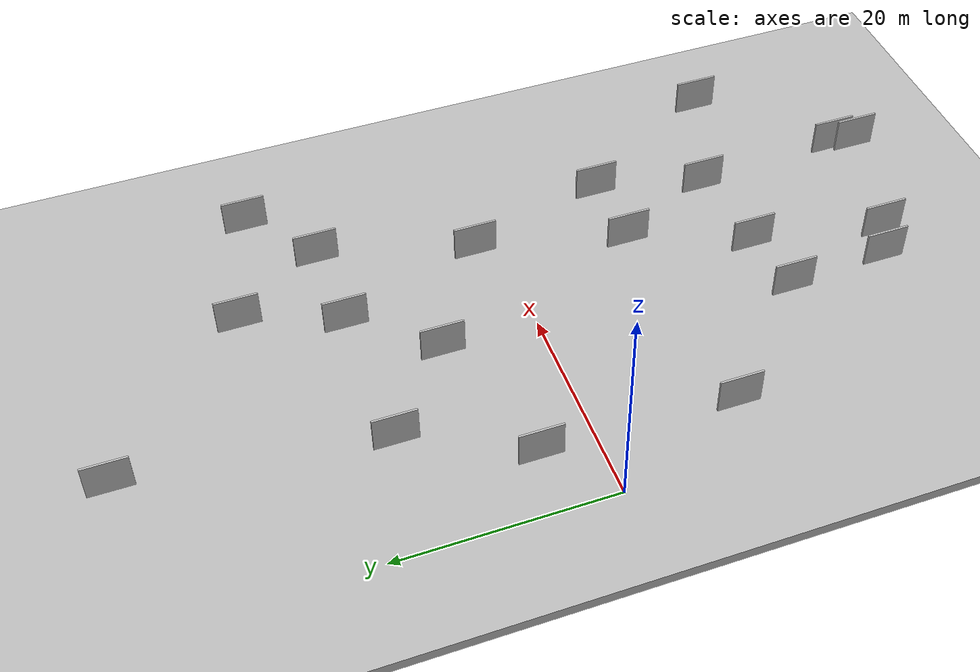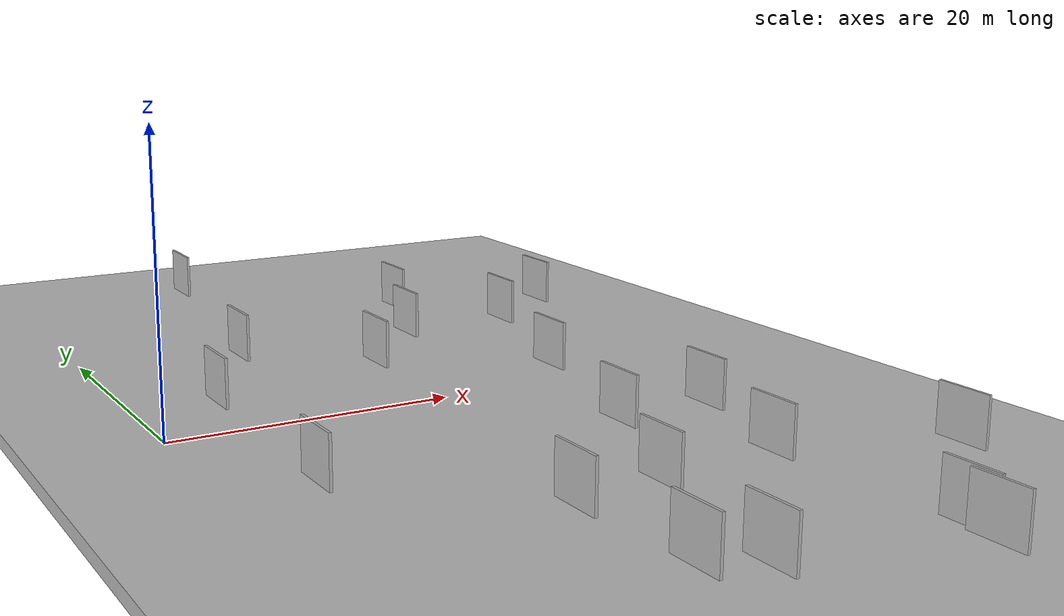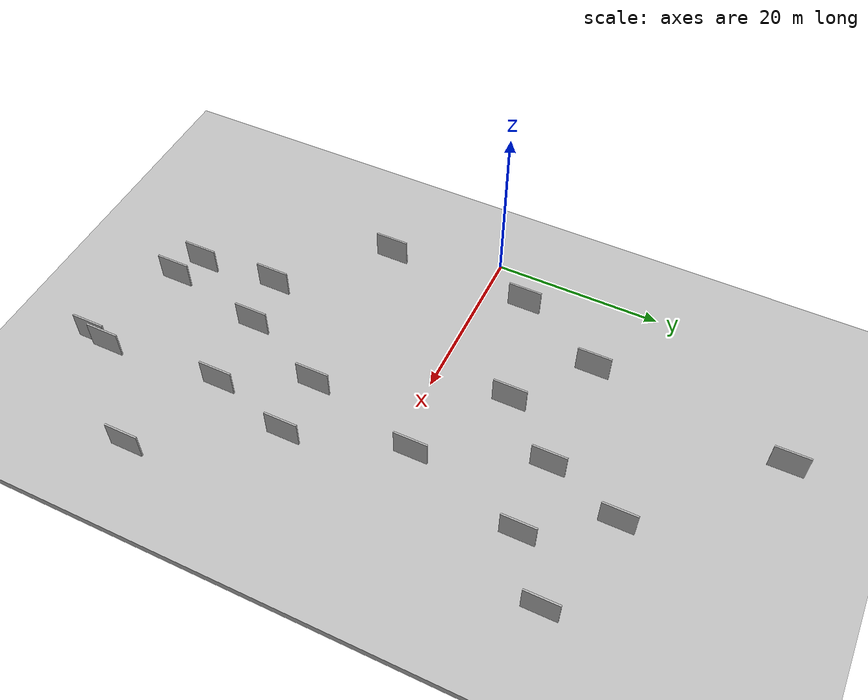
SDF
<?xml version="1.0" encoding="utf-8"?>

<sdf version="1.6">

   <world name="default">

      <gui fullscreen="0">

         <camera name="user_camera">

            <pose>-15 0 4.57585 0 0 0</pose>

            <view_controller>orbit</view_controller>

         </camera>

      </gui>

      <scene>

         <sky>

           <clouds>

             <speed>12</speed>

           </clouds>

         </sky>

         <ambient>0.4 0.4 0.4 1</ambient>

         <background>0.7 0.7 0.7 1</background>

         <shadows>1</shadows>

      </scene>

      <gravity>0 0 -9.8066</gravity>

      <magnetic_field>6e-06 2.3e-05 -4.2e-05</magnetic_field>

      <physics default="0" name="default_physics" type="ode">

         <ode>

            <solver>

               <type>quick</type>

               <iters>10</iters>

               <sor>1.0</sor>

               <use_dynamic_moi_rescaling>0</use_dynamic_moi_rescaling>

            </solver>

            <constraints>

               <cfm>0</cfm>

               <erp>0.2</erp>

               <contact_max_correcting_vel>100</contact_max_correcting_vel>

               <contact_surface_layer>0.001</contact_surface_layer>

            </constraints>

         </ode>

         <max_step_size>0.004</max_step_size>

         <real_time_factor>1</real_time_factor>

         <real_time_update_rate>250</real_time_update_rate>

      </physics>

      <light name="sun" type="directional">

         <cast_shadows>1</cast_shadows>

         <pose>0 0 10 0 0 0</pose>

         <diffuse>0.8 0.8 0.8 1</diffuse>

         <specular>0.2 0.2 0.2 1</specular>

         <attenuation>

            <range>1000</range>

            <constant>0.9</constant>

            <linear>0.01</linear>

            <quadratic>0.001</quadratic>

         </attenuation>

         <direction>-0.5 0.1 -0.9</direction>

      </light>

      <include>

         <name>ground_plane_1</name>

         <uri>model://HANNAS_ground_plane</uri>

         <pose>0 0 0  0 0 0</pose>

      </include>

      <include>

         <name>ground_plane_2</name>

         <uri>model://HANNAS_ground_plane</uri>

         <pose>100 0 0  0 0 0</pose>

      </include>

      <model name="HANNAS_wall_1">

         <static>1</static>

         <pose frame="">42.3563 -25.4138 0.0 0.000000 0.000000 1.570796</pose>

         <link name="link">

            <pose frame="">0 0 2.00 0 0 0</pose>

            <collision name="collision">

               <geometry>

                  <box>

                     <size>4.00 0.2 4.00</size>

                  </box>

               </geometry>

               <max_contacts>10</max_contacts>

               <surface>

                  <contact>

                     <ode/>

                  </contact>

                  <bounce/>

                  <friction>

                     <torsional>

                        <ode/>

                     </torsional>

                     <ode/>

                  </friction>

               </surface>

            </collision>

            <visual name="visual">

               <cast_shadows>0</cast_shadows>

               <geometry>

                  <box>

                     <size>4.00 0.2 4.00</size>

                  </box>

               </geometry>

               <material>

                  <script>

                     <uri>model://HANNAS_wall/materials/scripts</uri>

                     <uri>model://HANNAS_wall/materials/textures</uri>

                     <name>vrc/HANNAS_wall</name>

                  </script>

               </material>

            </visual>

            <self_collide>0</self_collide>

            <enable_wind>0</enable_wind>

            <kinematic>0</kinematic>

         </link>

      </model>

      <model name="HANNAS_wall_2">

         <static>1</static>

         <pose frame="">28.4034 24.9880 0.0 0.000000 0.000000 1.570796</pose>

         <link name="link">

            <pose frame="">0 0 2.00 0 0 0</pose>

            <collision name="collision">

               <geometry>

                  <box>

                     <size>4.00 0.2 4.00</size>

                  </box>

               </geometry>

               <max_contacts>10</max_contacts>

               <surface>

                  <contact>

                     <ode/>

                  </contact>

                  <bounce/>

                  <friction>

                     <torsional>

                        <ode/>

                     </torsional>

                     <ode/>

                  </friction>

               </surface>

            </collision>

            <visual name="visual">

               <cast_shadows>0</cast_shadows>

               <geometry>

                  <box>

                     <size>4.00 0.2 4.00</size>

                  </box>

               </geometry>

               <material>

                  <script>

                     <uri>model://HANNAS_wall/materials/scripts</uri>

                     <uri>model://HANNAS_wall/materials/textures</uri>

                     <name>vrc/HANNAS_wall</name>

                  </script>

               </material>

            </visual>

            <self_collide>0</self_collide>

            <enable_wind>0</enable_wind>

            <kinematic>0</kinematic>

         </link>

      </model>

      <model name="HANNAS_wall_3">

         <static>1</static>

         <pose frame="">14.2299 38.8647 0.0 0.000000 0.000000 1.570796</pose>

         <link name="link">

            <pose frame="">0 0 2.00 0 0 0</pose>

            <collision name="collision">

               <geometry>

                  <box>

                     <size>4.00 0.2 4.00</size>

                  </box>

               </geometry>

               <max_contacts>10</max_contacts>

               <surface>

                  <contact>

                     <ode/>

                  </contact>

                  <bounce/>

                  <friction>

                     <torsional>

                        <ode/>

                     </torsional>

                     <ode/>

                  </friction>

               </surface>

            </collision>

            <visual name="visual">

               <cast_shadows>0</cast_shadows>

               <geometry>

                  <box>

                     <size>4.00 0.2 4.00</size>

                  </box>

               </geometry>

               <material>

                  <script>

                     <uri>model://HANNAS_wall/materials/scripts</uri>

                     <uri>model://HANNAS_wall/materials/textures</uri>

                     <name>vrc/HANNAS_wall</name>

                  </script>

               </material>

            </visual>

            <self_collide>0</self_collide>

            <enable_wind>0</enable_wind>

            <kinematic>0</kinematic>

         </link>

      </model>

      <model name="HANNAS_wall_4">

         <static>1</static>

         <pose frame="">21.9740 -21.9791 0.0 0.000000 0.000000 1.570796</pose>

         <link name="link">

            <pose frame="">0 0 2.00 0 0 0</pose>

            <collision name="collision">

               <geometry>

                  <box>

                     <size>4.00 0.2 4.00</size>

                  </box>

               </geometry>

               <max_contacts>10</max_contacts>

               <surface>

                  <contact>

                     <ode/>

                  </contact>

                  <bounce/>

                  <friction>

                     <torsional>

                        <ode/>

                     </torsional>

                     <ode/>

                  </friction>

               </surface>

            </collision>

            <visual name="visual">

               <cast_shadows>0</cast_shadows>

               <geometry>

                  <box>

                     <size>4.00 0.2 4.00</size>

                  </box>

               </geometry>

               <material>

                  <script>

                     <uri>model://HANNAS_wall/materials/scripts</uri>

                     <uri>model://HANNAS_wall/materials/textures</uri>

                     <name>vrc/HANNAS_wall</name>

                  </script>

               </material>

            </visual>

            <self_collide>0</self_collide>

            <enable_wind>0</enable_wind>

            <kinematic>0</kinematic>

         </link>

      </model>

      <model name="HANNAS_wall_5">

         <static>1</static>

         <pose frame="">10.9429 15.8592 0.0 0.000000 0.000000 1.570796</pose>

         <link name="link">

            <pose frame="">0 0 2.00 0 0 0</pose>

            <collision name="collision">

               <geometry>

                  <box>

                     <size>4.00 0.2 4.00</size>

                  </box>

               </geometry>

               <max_contacts>10</max_contacts>

               <surface>

                  <contact>

                     <ode/>

                  </contact>

                  <bounce/>

                  <friction>

                     <torsional>

                        <ode/>

                     </torsional>

                     <ode/>

                  </friction>

               </surface>

            </collision>

            <visual name="visual">

               <cast_shadows>0</cast_shadows>

               <geometry>

                  <box>

                     <size>4.00 0.2 4.00</size>

                  </box>

               </geometry>

               <material>

                  <script>

                     <uri>model://HANNAS_wall/materials/scripts</uri>

                     <uri>model://HANNAS_wall/materials/textures</uri>

                     <name>vrc/HANNAS_wall</name>

                  </script>

               </material>

            </visual>

            <self_collide>0</self_collide>

            <enable_wind>0</enable_wind>

            <kinematic>0</kinematic>

         </link>

      </model>

      <model name="HANNAS_wall_6">

         <static>1</static>

         <pose frame="">40.6334 21.5172 0.0 0.000000 0.000000 1.570796</pose>

         <link name="link">

            <pose frame="">0 0 2.00 0 0 0</pose>

            <collision name="collision">

               <geometry>

                  <box>

                     <size>4.00 0.2 4.00</size>

                  </box>

               </geometry>

               <max_contacts>10</max_contacts>

               <surface>

                  <contact>

                     <ode/>

                  </contact>

                  <bounce/>

                  <friction>

                     <torsional>

                        <ode/>

                     </torsional>

                     <ode/>

                  </friction>

               </surface>

            </collision>

            <visual name="visual">

               <cast_shadows>0</cast_shadows>

               <geometry>

                  <box>

                     <size>4.00 0.2 4.00</size>

                  </box>

               </geometry>

               <material>

                  <script>

                     <uri>model://HANNAS_wall/materials/scripts</uri>

                     <uri>model://HANNAS_wall/materials/textures</uri>

                     <name>vrc/HANNAS_wall</name>

                  </script>

               </material>

            </visual>

            <self_collide>0</self_collide>

            <enable_wind>0</enable_wind>

            <kinematic>0</kinematic>

         </link>

      </model>

      <model name="HANNAS_wall_7">

         <static>1</static>

         <pose frame="">4.8999 -12.4683 0.0 0.000000 0.000000 1.570796</pose>

         <link name="link">

            <pose frame="">0 0 2.00 0 0 0</pose>

            <collision name="collision">

               <geometry>

                  <box>

                     <size>4.00 0.2 4.00</size>

                  </box>

               </geometry>

               <max_contacts>10</max_contacts>

               <surface>

                  <contact>

                     <ode/>

                  </contact>

                  <bounce/>

                  <friction>

                     <torsional>

                        <ode/>

                     </torsional>

                     <ode/>

                  </friction>

               </surface>

            </collision>

            <visual name="visual">

               <cast_shadows>0</cast_shadows>

               <geometry>

                  <box>

                     <size>4.00 0.2 4.00</size>

                  </box>

               </geometry>

               <material>

                  <script>

                     <uri>model://HANNAS_wall/materials/scripts</uri>

                     <uri>model://HANNAS_wall/materials/textures</uri>

                     <name>vrc/HANNAS_wall</name>

                  </script>

               </material>

            </visual>

            <self_collide>0</self_collide>

            <enable_wind>0</enable_wind>

            <kinematic>0</kinematic>

         </link>

      </model>

      <model name="HANNAS_wall_8">

         <static>1</static>

         <pose frame="">31.9470 -35.4613 0.0 0.000000 0.000000 1.570796</pose>

         <link name="link">

            <pose frame="">0 0 2.00 0 0 0</pose>

            <collision name="collision">

               <geometry>

                  <box>

                     <size>4.00 0.2 4.00</size>

                  </box>

               </geometry>

               <max_contacts>10</max_contacts>

               <surface>

                  <contact>

                     <ode/>

                  </contact>

                  <bounce/>

                  <friction>

                     <torsional>

                        <ode/>

                     </torsional>

                     <ode/>

                  </friction>

               </surface>

            </collision>

            <visual name="visual">

               <cast_shadows>0</cast_shadows>

               <geometry>

                  <box>

                     <size>4.00 0.2 4.00</size>

                  </box>

               </geometry>

               <material>

                  <script>

                     <uri>model://HANNAS_wall/materials/scripts</uri>

                     <uri>model://HANNAS_wall/materials/textures</uri>

                     <name>vrc/HANNAS_wall</name>

                  </script>

               </material>

            </visual>

            <self_collide>0</self_collide>

            <enable_wind>0</enable_wind>

            <kinematic>0</kinematic>

         </link>

      </model>

      <model name="HANNAS_wall_9">

         <static>1</static>

         <pose frame="">5.3465 5.1892 0.0 0.000000 0.000000 1.570796</pose>

         <link name="link">

            <pose frame="">0 0 2.00 0 0 0</pose>

            <collision name="collision">

               <geometry>

                  <box>

                     <size>4.00 0.2 4.00</size>

                  </box>

               </geometry>

               <max_contacts>10</max_contacts>

               <surface>

                  <contact>

                     <ode/>

                  </contact>

                  <bounce/>

                  <friction>

                     <torsional>

                        <ode/>

                     </torsional>

                     <ode/>

                  </friction>

               </surface>

            </collision>

            <visual name="visual">

               <cast_shadows>0</cast_shadows>

               <geometry>

                  <box>

                     <size>4.00 0.2 4.00</size>

                  </box>

               </geometry>

               <material>

                  <script>

                     <uri>model://HANNAS_wall/materials/scripts</uri>

                     <uri>model://HANNAS_wall/materials/textures</uri>

                     <name>vrc/HANNAS_wall</name>

                  </script>

               </material>

            </visual>

            <self_collide>0</self_collide>

            <enable_wind>0</enable_wind>

            <kinematic>0</kinematic>

         </link>

      </model>

      <model name="HANNAS_wall_10">

         <static>1</static>

         <pose frame="">30.9907 -21.0378 0.0 0.000000 0.000000 1.570796</pose>

         <link name="link">

            <pose frame="">0 0 2.00 0 0 0</pose>

            <collision name="collision">

               <geometry>

                  <box>

                     <size>4.00 0.2 4.00</size>

                  </box>

               </geometry>

               <max_contacts>10</max_contacts>

               <surface>

                  <contact>

                     <ode/>

                  </contact>

                  <bounce/>

                  <friction>

                     <torsional>

                        <ode/>

                     </torsional>

                     <ode/>

                  </friction>

               </surface>

            </collision>

            <visual name="visual">

               <cast_shadows>0</cast_shadows>

               <geometry>

                  <box>

                     <size>4.00 0.2 4.00</size>

                  </box>

               </geometry>

               <material>

                  <script>

                     <uri>model://HANNAS_wall/materials/scripts</uri>

                     <uri>model://HANNAS_wall/materials/textures</uri>

                     <name>vrc/HANNAS_wall</name>

                  </script>

               </material>

            </visual>

            <self_collide>0</self_collide>

            <enable_wind>0</enable_wind>

            <kinematic>0</kinematic>

         </link>

      </model>

      <model name="HANNAS_wall_11">

         <static>1</static>

         <pose frame="">29.9574 2.4031 0.0 0.000000 0.000000 1.570796</pose>

         <link name="link">

            <pose frame="">0 0 2.00 0 0 0</pose>

            <collision name="collision">

               <geometry>

                  <box>

                     <size>4.00 0.2 4.00</size>

                  </box>

               </geometry>

               <max_contacts>10</max_contacts>

               <surface>

                  <contact>

                     <ode/>

                  </contact>

                  <bounce/>

                  <friction>

                     <torsional>

                        <ode/>

                     </torsional>

                     <ode/>

                  </friction>

               </surface>

            </collision>

            <visual name="visual">

               <cast_shadows>0</cast_shadows>

               <geometry>

                  <box>

                     <size>4.00 0.2 4.00</size>

                  </box>

               </geometry>

               <material>

                  <script>

                     <uri>model://HANNAS_wall/materials/scripts</uri>

                     <uri>model://HANNAS_wall/materials/textures</uri>

                     <name>vrc/HANNAS_wall</name>

                  </script>

               </material>

            </visual>

            <self_collide>0</self_collide>

            <enable_wind>0</enable_wind>

            <kinematic>0</kinematic>

         </link>

      </model>

      <model name="HANNAS_wall_12">

         <static>1</static>

         <pose frame="">25.1142 16.1302 0.0 0.000000 0.000000 1.570796</pose>

         <link name="link">

            <pose frame="">0 0 2.00 0 0 0</pose>

            <collision name="collision">

               <geometry>

                  <box>

                     <size>4.00 0.2 4.00</size>

                  </box>

               </geometry>

               <max_contacts>10</max_contacts>

               <surface>

                  <contact>

                     <ode/>

                  </contact>

                  <bounce/>

                  <friction>

                     <torsional>

                        <ode/>

                     </torsional>

                     <ode/>

                  </friction>

               </surface>

            </collision>

            <visual name="visual">

               <cast_shadows>0</cast_shadows>

               <geometry>

                  <box>

                     <size>4.00 0.2 4.00</size>

                  </box>

               </geometry>

               <material>

                  <script>

                     <uri>model://HANNAS_wall/materials/scripts</uri>

                     <uri>model://HANNAS_wall/materials/textures</uri>

                     <name>vrc/HANNAS_wall</name>

                  </script>

               </material>

            </visual>

            <self_collide>0</self_collide>

            <enable_wind>0</enable_wind>

            <kinematic>0</kinematic>

         </link>

      </model>

      <model name="HANNAS_wall_13">

         <static>1</static>

         <pose frame="">19.0687 9.1226 0.0 0.000000 0.000000 1.570796</pose>

         <link name="link">

            <pose frame="">0 0 2.00 0 0 0</pose>

            <collision name="collision">

               <geometry>

                  <box>

                     <size>4.00 0.2 4.00</size>

                  </box>

               </geometry>

               <max_contacts>10</max_contacts>

               <surface>

                  <contact>

                     <ode/>

                  </contact>

                  <bounce/>

                  <friction>

                     <torsional>

                        <ode/>

                     </torsional>

                     <ode/>

                  </friction>

               </surface>

            </collision>

            <visual name="visual">

               <cast_shadows>0</cast_shadows>

               <geometry>

                  <box>

                     <size>4.00 0.2 4.00</size>

                  </box>

               </geometry>

               <material>

                  <script>

                     <uri>model://HANNAS_wall/materials/scripts</uri>

                     <uri>model://HANNAS_wall/materials/textures</uri>

                     <name>vrc/HANNAS_wall</name>

                  </script>

               </material>

            </visual>

            <self_collide>0</self_collide>

            <enable_wind>0</enable_wind>

            <kinematic>0</kinematic>

         </link>

      </model>

      <model name="HANNAS_wall_14">

         <static>1</static>

         <pose frame="">16.2133 -32.5682 0.0 0.000000 0.000000 1.570796</pose>

         <link name="link">

            <pose frame="">0 0 2.00 0 0 0</pose>

            <collision name="collision">

               <geometry>

                  <box>

                     <size>4.00 0.2 4.00</size>

                  </box>

               </geometry>

               <max_contacts>10</max_contacts>

               <surface>

                  <contact>

                     <ode/>

                  </contact>

                  <bounce/>

                  <friction>

                     <torsional>

                        <ode/>

                     </torsional>

                     <ode/>

                  </friction>

               </surface>

            </collision>

            <visual name="visual">

               <cast_shadows>0</cast_shadows>

               <geometry>

                  <box>

                     <size>4.00 0.2 4.00</size>

                  </box>

               </geometry>

               <material>

                  <script>

                     <uri>model://HANNAS_wall/materials/scripts</uri>

                     <uri>model://HANNAS_wall/materials/textures</uri>

                     <name>vrc/HANNAS_wall</name>

                  </script>

               </material>

            </visual>

            <self_collide>0</self_collide>

            <enable_wind>0</enable_wind>

            <kinematic>0</kinematic>

         </link>

      </model>

      <model name="HANNAS_wall_15">

         <static>1</static>

         <pose frame="">31.5056 -37.7140 0.0 0.000000 0.000000 1.570796</pose>

         <link name="link">

            <pose frame="">0 0 2.00 0 0 0</pose>

            <collision name="collision">

               <geometry>

                  <box>

                     <size>4.00 0.2 4.00</size>

                  </box>

               </geometry>

               <max_contacts>10</max_contacts>

               <surface>

                  <contact>

                     <ode/>

                  </contact>

                  <bounce/>

                  <friction>

                     <torsional>

                        <ode/>

                     </torsional>

                     <ode/>

                  </friction>

               </surface>

            </collision>

            <visual name="visual">

               <cast_shadows>0</cast_shadows>

               <geometry>

                  <box>

                     <size>4.00 0.2 4.00</size>

                  </box>

               </geometry>

               <material>

                  <script>

                     <uri>model://HANNAS_wall/materials/scripts</uri>

                     <uri>model://HANNAS_wall/materials/textures</uri>

                     <name>vrc/HANNAS_wall</name>

                  </script>

               </material>

            </visual>

            <self_collide>0</self_collide>

            <enable_wind>0</enable_wind>

            <kinematic>0</kinematic>

         </link>

      </model>

      <model name="HANNAS_wall_16">

         <static>1</static>

         <pose frame="">19.5354 -34.2358 0.0 0.000000 0.000000 1.570796</pose>

         <link name="link">

            <pose frame="">0 0 2.00 0 0 0</pose>

            <collision name="collision">

               <geometry>

                  <box>

                     <size>4.00 0.2 4.00</size>

                  </box>

               </geometry>

               <max_contacts>10</max_contacts>

               <surface>

                  <contact>

                     <ode/>

                  </contact>

                  <bounce/>

                  <friction>

                     <torsional>

                        <ode/>

                     </torsional>

                     <ode/>

                  </friction>

               </surface>

            </collision>

            <visual name="visual">

               <cast_shadows>0</cast_shadows>

               <geometry>

                  <box>

                     <size>4.00 0.2 4.00</size>

                  </box>

               </geometry>

               <material>

                  <script>

                     <uri>model://HANNAS_wall/materials/scripts</uri>

                     <uri>model://HANNAS_wall/materials/textures</uri>

                     <name>vrc/HANNAS_wall</name>

                  </script>

               </material>

            </visual>

            <self_collide>0</self_collide>

            <enable_wind>0</enable_wind>

            <kinematic>0</kinematic>

         </link>

      </model>

      <model name="HANNAS_wall_17">

         <static>1</static>

         <pose frame="">15.5525 -22.9472 0.0 0.000000 0.000000 1.570796</pose>

         <link name="link">

            <pose frame="">0 0 2.00 0 0 0</pose>

            <collision name="collision">

               <geometry>

                  <box>

                     <size>4.00 0.2 4.00</size>

                  </box>

               </geometry>

               <max_contacts>10</max_contacts>

               <surface>

                  <contact>

                     <ode/>

                  </contact>

                  <bounce/>

                  <friction>

                     <torsional>

                        <ode/>

                     </torsional>

                     <ode/>

                  </friction>

               </surface>

            </collision>

            <visual name="visual">

               <cast_shadows>0</cast_shadows>

               <geometry>

                  <box>

                     <size>4.00 0.2 4.00</size>

                  </box>

               </geometry>

               <material>

                  <script>

                     <uri>model://HANNAS_wall/materials/scripts</uri>

                     <uri>model://HANNAS_wall/materials/textures</uri>

                     <name>vrc/HANNAS_wall</name>

                  </script>

               </material>

            </visual>

            <self_collide>0</self_collide>

            <enable_wind>0</enable_wind>

            <kinematic>0</kinematic>

         </link>

      </model>

      <model name="HANNAS_wall_18">

         <static>1</static>

         <pose frame="">34.0459 16.4020 0.0 0.000000 0.000000 1.570796</pose>

         <link name="link">

            <pose frame="">0 0 2.00 0 0 0</pose>

            <collision name="collision">

               <geometry>

                  <box>

                     <size>4.00 0.2 4.00</size>

                  </box>

               </geometry>

               <max_contacts>10</max_contacts>

               <surface>

                  <contact>

                     <ode/>

                  </contact>

                  <bounce/>

                  <friction>

                     <torsional>

                        <ode/>

                     </torsional>

                     <ode/>

                  </friction>

               </surface>

            </collision>

            <visual name="visual">

               <cast_shadows>0</cast_shadows>

               <geometry>

                  <box>

                     <size>4.00 0.2 4.00</size>

                  </box>

               </geometry>

               <material>

                  <script>

                     <uri>model://HANNAS_wall/materials/scripts</uri>

                     <uri>model://HANNAS_wall/materials/textures</uri>

                     <name>vrc/HANNAS_wall</name>

                  </script>

               </material>

            </visual>

            <self_collide>0</self_collide>

            <enable_wind>0</enable_wind>

            <kinematic>0</kinematic>

         </link>

      </model>

      <model name="HANNAS_wall_19">

         <static>1</static>

         <pose frame="">33.7502 -11.1022 0.0 0.000000 0.000000 1.570796</pose>

         <link name="link">

            <pose frame="">0 0 2.00 0 0 0</pose>

            <collision name="collision">

               <geometry>

                  <box>

                     <size>4.00 0.2 4.00</size>

                  </box>

               </geometry>

               <max_contacts>10</max_contacts>

               <surface>

                  <contact>

                     <ode/>

                  </contact>

                  <bounce/>

                  <friction>

                     <torsional>

                        <ode/>

                     </torsional>

                     <ode/>

                  </friction>

               </surface>

            </collision>

            <visual name="visual">

               <cast_shadows>0</cast_shadows>

               <geometry>

                  <box>

                     <size>4.00 0.2 4.00</size>

                  </box>

               </geometry>

               <material>

                  <script>

                     <uri>model://HANNAS_wall/materials/scripts</uri>

                     <uri>model://HANNAS_wall/materials/textures</uri>

                     <name>vrc/HANNAS_wall</name>

                  </script>

               </material>

            </visual>

            <self_collide>0</self_collide>

            <enable_wind>0</enable_wind>

            <kinematic>0</kinematic>

         </link>

      </model>

      <model name="HANNAS_wall_20">

         <static>1</static>

         <pose frame="">26.4982 -11.3734 0.0 0.000000 0.000000 1.570796</pose>

         <link name="link">

            <pose frame="">0 0 2.00 0 0 0</pose>

            <collision name="collision">

               <geometry>

                  <box>

                     <size>4.00 0.2 4.00</size>

                  </box>

               </geometry>

               <max_contacts>10</max_contacts>

               <surface>

                  <contact>

                     <ode/>

                  </contact>

                  <bounce/>

                  <friction>

                     <torsional>

                        <ode/>

                     </torsional>

                     <ode/>

                  </friction>

               </surface>

            </collision>

            <visual name="visual">

               <cast_shadows>0</cast_shadows>

               <geometry>

                  <box>

                     <size>4.00 0.2 4.00</size>

                  </box>

               </geometry>

               <material>

                  <script>

                     <uri>model://HANNAS_wall/materials/scripts</uri>

                     <uri>model://HANNAS_wall/materials/textures</uri>

                     <name>vrc/HANNAS_wall</name>

                  </script>

               </material>

            </visual>

            <self_collide>0</self_collide>

            <enable_wind>0</enable_wind>

            <kinematic>0</kinematic>

         </link>

      </model>

   </world>

</sdf>

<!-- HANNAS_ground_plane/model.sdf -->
<sdf version="1.4">
<model name="HANNAS_ground_plane">
  <static>true</static>
    <link name="link">
      <collision name="collision">
        <geometry>
          <plane>
            <normal>0 0 1</normal>
            <size>1000 1000</size>
          </plane>
        </geometry>
        <surface>
          <friction>
            <ode>
              <mu>100</mu>
              <mu2>50</mu2>
            </ode>
          </friction>
        </surface>
      </collision>
      <visual name="visual">
        <cast_shadows>false</cast_shadows>
        <geometry>
          <plane>
            <normal>0 0 1</normal>
            <size>1000 1000</size>
          </plane>
        </geometry>
        <material>
          <script>
            <uri>model://HANNAS_ground_plane/materials/scripts/HANNAS_ground_plane.material</uri>
	    <uri>model://HANNAS_ground_plane/materials/textures</uri>
            <name>HANNASGroundPlane/Image</name>
          </script>
        </material>
      </visual>
    </link>
  </model>
</sdf>
